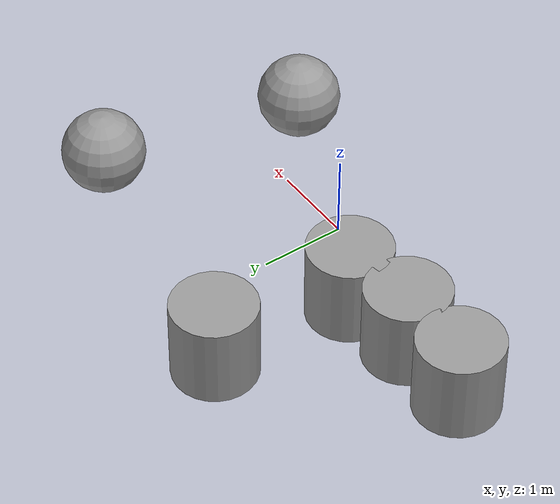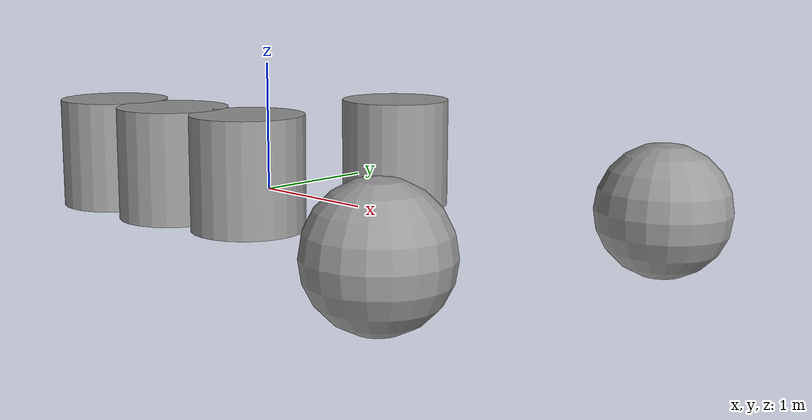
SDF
<?xml version='1.0'?>
<sdf version='1.6'>
  <model name='obstacles.sdf'>
    <link name='link_0'>
      <inertial>
        <mass>1570.8</mass>
        <inertia>
          <ixx>229.074</ixx>
          <ixy>0</ixy>
          <ixz>0</ixz>
          <iyy>229.074</iyy>
          <iyz>0</iyz>
          <izz>196.35</izz>
        </inertia>
        <pose frame=''>0 0 0 0 -0 0</pose>
      </inertial>
      <pose frame=''>-2.50752 0.241175 0 0 -0 0</pose>
      <self_collide>0</self_collide>
      <enable_wind>0</enable_wind>
      <kinematic>0</kinematic>
      <gravity>1</gravity>
      <visual name='visual'>
        <pose frame=''>0 0 0 0 -0 0</pose>
        <geometry>
          <cylinder>
            <radius>0.5</radius>
            <length>1</length>
          </cylinder>
        </geometry>
        <material>
          <lighting>1</lighting>
          <script>
            <uri>file://media/materials/scripts/gazebo.material</uri>
            <name>Gazebo/Grey</name>
          </script>
          <shader type='vertex'>
            <normal_map>__default__</normal_map>
          </shader>
        </material>
        <transparency>0</transparency>
        <cast_shadows>1</cast_shadows>
      </visual>
      <collision name='collision'>
        <laser_retro>0</laser_retro>
        <max_contacts>10</max_contacts>
        <pose frame=''>0 0 0 0 -0 0</pose>
        <geometry>
          <cylinder>
            <radius>0.5</radius>
            <length>1</length>
          </cylinder>
        </geometry>
        <surface>
          <friction>
            <ode>
              <mu>1</mu>
              <mu2>1</mu2>
              <fdir1>0 0 0</fdir1>
              <slip1>0</slip1>
              <slip2>0</slip2>
            </ode>
            <torsional>
              <coefficient>1</coefficient>
              <patch_radius>0</patch_radius>
              <surface_radius>0</surface_radius>
              <use_patch_radius>1</use_patch_radius>
              <ode>
                <slip>0</slip>
              </ode>
            </torsional>
          </friction>
          <bounce>
            <restitution_coefficient>0</restitution_coefficient>
            <threshold>1e+06</threshold>
          </bounce>
          <contact>
            <collide_without_contact>0</collide_without_contact>
            <collide_without_contact_bitmask>1</collide_without_contact_bitmask>
            <collide_bitmask>1</collide_bitmask>
            <ode>
              <soft_cfm>0</soft_cfm>
              <soft_erp>0.2</soft_erp>
              <kp>1e+13</kp>
              <kd>1</kd>
              <max_vel>0.01</max_vel>
              <min_depth>0</min_depth>
            </ode>
            <bullet>
              <split_impulse>1</split_impulse>
              <split_impulse_penetration_threshold>-0.01</split_impulse_penetration_threshold>
              <soft_cfm>0</soft_cfm>
              <soft_erp>0.2</soft_erp>
              <kp>1e+13</kp>
              <kd>1</kd>
            </bullet>
          </contact>
        </surface>
      </collision>
    </link>
    <link name='link_1'>
      <inertial>
        <mass>1570.8</mass>
        <inertia>
          <ixx>229.074</ixx>
          <ixy>0</ixy>
          <ixz>0</ixz>
          <iyy>229.074</iyy>
          <iyz>0</iyz>
          <izz>196.35</izz>
        </inertia>
        <pose frame=''>0 0 0 0 -0 0</pose>
      </inertial>
      <pose frame=''>-1.58866 0.239551 0 0 -0 0</pose>
      <self_collide>0</self_collide>
      <enable_wind>0</enable_wind>
      <kinematic>0</kinematic>
      <gravity>1</gravity>
      <visual name='visual'>
        <pose frame=''>0 0 0 0 -0 0</pose>
        <geometry>
          <cylinder>
            <radius>0.5</radius>
            <length>1</length>
          </cylinder>
        </geometry>
        <material>
          <lighting>1</lighting>
          <script>
            <uri>file://media/materials/scripts/gazebo.material</uri>
            <name>Gazebo/Grey</name>
          </script>
          <shader type='vertex'>
            <normal_map>__default__</normal_map>
          </shader>
        </material>
        <transparency>0</transparency>
        <cast_shadows>1</cast_shadows>
      </visual>
      <collision name='collision'>
        <laser_retro>0</laser_retro>
        <max_contacts>10</max_contacts>
        <pose frame=''>0 0 0 0 -0 0</pose>
        <geometry>
          <cylinder>
            <radius>0.5</radius>
            <length>1</length>
          </cylinder>
        </geometry>
        <surface>
          <friction>
            <ode>
              <mu>1</mu>
              <mu2>1</mu2>
              <fdir1>0 0 0</fdir1>
              <slip1>0</slip1>
              <slip2>0</slip2>
            </ode>
            <torsional>
              <coefficient>1</coefficient>
              <patch_radius>0</patch_radius>
              <surface_radius>0</surface_radius>
              <use_patch_radius>1</use_patch_radius>
              <ode>
                <slip>0</slip>
              </ode>
            </torsional>
          </friction>
          <bounce>
            <restitution_coefficient>0</restitution_coefficient>
            <threshold>1e+06</threshold>
          </bounce>
          <contact>
            <collide_without_contact>0</collide_without_contact>
            <collide_without_contact_bitmask>1</collide_without_contact_bitmask>
            <collide_bitmask>1</collide_bitmask>
            <ode>
              <soft_cfm>0</soft_cfm>
              <soft_erp>0.2</soft_erp>
              <kp>1e+13</kp>
              <kd>1</kd>
              <max_vel>0.01</max_vel>
              <min_depth>0</min_depth>
            </ode>
            <bullet>
              <split_impulse>1</split_impulse>
              <split_impulse_penetration_threshold>-0.01</split_impulse_penetration_threshold>
              <soft_cfm>0</soft_cfm>
              <soft_erp>0.2</soft_erp>
              <kp>1e+13</kp>
              <kd>1</kd>
            </bullet>
          </contact>
        </surface>
      </collision>
    </link>
    <link name='link_2'>
      <inertial>
        <mass>1570.8</mass>
        <inertia>
          <ixx>229.074</ixx>
          <ixy>0</ixy>
          <ixz>0</ixz>
          <iyy>229.074</iyy>
          <iyz>0</iyz>
          <izz>196.35</izz>
        </inertia>
        <pose frame=''>0 0 0 0 -0 0</pose>
      </inertial>
      <pose frame=''>-0.707908 0.367576 0 0 -0 0</pose>
      <self_collide>0</self_collide>
      <enable_wind>0</enable_wind>
      <kinematic>0</kinematic>
      <gravity>1</gravity>
      <visual name='visual'>
        <pose frame=''>0 0 0 0 -0 0</pose>
        <geometry>
          <cylinder>
            <radius>0.5</radius>
            <length>1</length>
          </cylinder>
        </geometry>
        <material>
          <lighting>1</lighting>
          <script>
            <uri>file://media/materials/scripts/gazebo.material</uri>
            <name>Gazebo/Grey</name>
          </script>
          <shader type='vertex'>
            <normal_map>__default__</normal_map>
          </shader>
        </material>
        <transparency>0</transparency>
        <cast_shadows>1</cast_shadows>
      </visual>
      <collision name='collision'>
        <laser_retro>0</laser_retro>
        <max_contacts>10</max_contacts>
        <pose frame=''>0 0 0 0 -0 0</pose>
        <geometry>
          <cylinder>
            <radius>0.5</radius>
            <length>1</length>
          </cylinder>
        </geometry>
        <surface>
          <friction>
            <ode>
              <mu>1</mu>
              <mu2>1</mu2>
              <fdir1>0 0 0</fdir1>
              <slip1>0</slip1>
              <slip2>0</slip2>
            </ode>
            <torsional>
              <coefficient>1</coefficient>
              <patch_radius>0</patch_radius>
              <surface_radius>0</surface_radius>
              <use_patch_radius>1</use_patch_radius>
              <ode>
                <slip>0</slip>
              </ode>
            </torsional>
          </friction>
          <bounce>
            <restitution_coefficient>0</restitution_coefficient>
            <threshold>1e+06</threshold>
          </bounce>
          <contact>
            <collide_without_contact>0</collide_without_contact>
            <collide_without_contact_bitmask>1</collide_without_contact_bitmask>
            <collide_bitmask>1</collide_bitmask>
            <ode>
              <soft_cfm>0</soft_cfm>
              <soft_erp>0.2</soft_erp>
              <kp>1e+13</kp>
              <kd>1</kd>
              <max_vel>0.01</max_vel>
              <min_depth>0</min_depth>
            </ode>
            <bullet>
              <split_impulse>1</split_impulse>
              <split_impulse_penetration_threshold>-0.01</split_impulse_penetration_threshold>
              <soft_cfm>0</soft_cfm>
              <soft_erp>0.2</soft_erp>
              <kp>1e+13</kp>
              <kd>1</kd>
            </bullet>
          </contact>
        </surface>
      </collision>
    </link>
    <link name='link_3'>
      <inertial>
        <mass>1570.8</mass>
        <inertia>
          <ixx>229.074</ixx>
          <ixy>0</ixy>
          <ixz>0</ixz>
          <iyy>229.074</iyy>
          <iyz>0</iyz>
          <izz>196.35</izz>
        </inertia>
        <pose frame=''>0 0 0 0 -0 0</pose>
      </inertial>
      <pose frame=''>-0.588067 2.08543 0 0 -0 0</pose>
      <self_collide>0</self_collide>
      <enable_wind>0</enable_wind>
      <kinematic>0</kinematic>
      <gravity>1</gravity>
      <visual name='visual'>
        <pose frame=''>0 0 0 0 -0 0</pose>
        <geometry>
          <cylinder>
            <radius>0.5</radius>
            <length>1</length>
          </cylinder>
        </geometry>
        <material>
          <lighting>1</lighting>
          <script>
            <uri>file://media/materials/scripts/gazebo.material</uri>
            <name>Gazebo/Grey</name>
          </script>
          <shader type='vertex'>
            <normal_map>__default__</normal_map>
          </shader>
        </material>
        <transparency>0</transparency>
        <cast_shadows>1</cast_shadows>
      </visual>
      <collision name='collision'>
        <laser_retro>0</laser_retro>
        <max_contacts>10</max_contacts>
        <pose frame=''>0 0 0 0 -0 0</pose>
        <geometry>
          <cylinder>
            <radius>0.5</radius>
            <length>1</length>
          </cylinder>
        </geometry>
        <surface>
          <friction>
            <ode>
              <mu>1</mu>
              <mu2>1</mu2>
              <fdir1>0 0 0</fdir1>
              <slip1>0</slip1>
              <slip2>0</slip2>
            </ode>
            <torsional>
              <coefficient>1</coefficient>
              <patch_radius>0</patch_radius>
              <surface_radius>0</surface_radius>
              <use_patch_radius>1</use_patch_radius>
              <ode>
                <slip>0</slip>
              </ode>
            </torsional>
          </friction>
          <bounce>
            <restitution_coefficient>0</restitution_coefficient>
            <threshold>1e+06</threshold>
          </bounce>
          <contact>
            <collide_without_contact>0</collide_without_contact>
            <collide_without_contact_bitmask>1</collide_without_contact_bitmask>
            <collide_bitmask>1</collide_bitmask>
            <ode>
              <soft_cfm>0</soft_cfm>
              <soft_erp>0.2</soft_erp>
              <kp>1e+13</kp>
              <kd>1</kd>
              <max_vel>0.01</max_vel>
              <min_depth>0</min_depth>
            </ode>
            <bullet>
              <split_impulse>1</split_impulse>
              <split_impulse_penetration_threshold>-0.01</split_impulse_penetration_threshold>
              <soft_cfm>0</soft_cfm>
              <soft_erp>0.2</soft_erp>
              <kp>1e+13</kp>
              <kd>1</kd>
            </bullet>
          </contact>
        </surface>
      </collision>
    </link>
    <link name='link_5'>
      <inertial>
        <mass>1047.2</mass>
        <inertia>
          <ixx>104.72</ixx>
          <ixy>0</ixy>
          <ixz>0</ixz>
          <iyy>104.72</iyy>
          <iyz>0</iyz>
          <izz>104.72</izz>
        </inertia>
        <pose frame=''>0 0 0 0 -0 0</pose>
      </inertial>
      <pose frame=''>2.15914 -0.982726 0 0 -0 0</pose>
      <self_collide>0</self_collide>
      <enable_wind>0</enable_wind>
      <kinematic>0</kinematic>
      <gravity>1</gravity>
      <visual name='visual'>
        <pose frame=''>0 0 0 0 -0 0</pose>
        <geometry>
          <sphere>
            <radius>0.5</radius>
          </sphere>
        </geometry>
        <material>
          <lighting>1</lighting>
          <script>
            <uri>file://media/materials/scripts/gazebo.material</uri>
            <name>Gazebo/Grey</name>
          </script>
          <shader type='vertex'>
            <normal_map>__default__</normal_map>
          </shader>
        </material>
        <transparency>0</transparency>
        <cast_shadows>1</cast_shadows>
      </visual>
      <collision name='collision'>
        <laser_retro>0</laser_retro>
        <max_contacts>10</max_contacts>
        <pose frame=''>0 0 0 0 -0 0</pose>
        <geometry>
          <sphere>
            <radius>0.5</radius>
          </sphere>
        </geometry>
        <surface>
          <friction>
            <ode>
              <mu>1</mu>
              <mu2>1</mu2>
              <fdir1>0 0 0</fdir1>
              <slip1>0</slip1>
              <slip2>0</slip2>
            </ode>
            <torsional>
              <coefficient>1</coefficient>
              <patch_radius>0</patch_radius>
              <surface_radius>0</surface_radius>
              <use_patch_radius>1</use_patch_radius>
              <ode>
                <slip>0</slip>
              </ode>
            </torsional>
          </friction>
          <bounce>
            <restitution_coefficient>0</restitution_coefficient>
            <threshold>1e+06</threshold>
          </bounce>
          <contact>
            <collide_without_contact>0</collide_without_contact>
            <collide_without_contact_bitmask>1</collide_without_contact_bitmask>
            <collide_bitmask>1</collide_bitmask>
            <ode>
              <soft_cfm>0</soft_cfm>
              <soft_erp>0.2</soft_erp>
              <kp>1e+13</kp>
              <kd>1</kd>
              <max_vel>0.01</max_vel>
              <min_depth>0</min_depth>
            </ode>
            <bullet>
              <split_impulse>1</split_impulse>
              <split_impulse_penetration_threshold>-0.01</split_impulse_penetration_threshold>
              <soft_cfm>0</soft_cfm>
              <soft_erp>0.2</soft_erp>
              <kp>1e+13</kp>
              <kd>1</kd>
            </bullet>
          </contact>
        </surface>
      </collision>
    </link>
    <link name='link_6'>
      <inertial>
        <mass>1047.2</mass>
        <inertia>
          <ixx>104.72</ixx>
          <ixy>0</ixy>
          <ixz>0</ixz>
          <iyy>104.72</iyy>
          <iyz>0</iyz>
          <izz>104.72</izz>
        </inertia>
        <pose frame=''>0 0 0 0 -0 0</pose>
      </inertial>
      <pose frame=''>2.66066 1.47394 0 0 -0 0</pose>
      <self_collide>0</self_collide>
      <enable_wind>0</enable_wind>
      <kinematic>0</kinematic>
      <gravity>1</gravity>
      <visual name='visual'>
        <pose frame=''>0 0 0 0 -0 0</pose>
        <geometry>
          <sphere>
            <radius>0.5</radius>
          </sphere>
        </geometry>
        <material>
          <lighting>1</lighting>
          <script>
            <uri>file://media/materials/scripts/gazebo.material</uri>
            <name>Gazebo/Grey</name>
          </script>
          <shader type='vertex'>
            <normal_map>__default__</normal_map>
          </shader>
        </material>
        <transparency>0</transparency>
        <cast_shadows>1</cast_shadows>
      </visual>
      <collision name='collision'>
        <laser_retro>0</laser_retro>
        <max_contacts>10</max_contacts>
        <pose frame=''>0 0 0 0 -0 0</pose>
        <geometry>
          <sphere>
            <radius>0.5</radius>
          </sphere>
        </geometry>
        <surface>
          <friction>
            <ode>
              <mu>1</mu>
              <mu2>1</mu2>
              <fdir1>0 0 0</fdir1>
              <slip1>0</slip1>
              <slip2>0</slip2>
            </ode>
            <torsional>
              <coefficient>1</coefficient>
              <patch_radius>0</patch_radius>
              <surface_radius>0</surface_radius>
              <use_patch_radius>1</use_patch_radius>
              <ode>
                <slip>0</slip>
              </ode>
            </torsional>
          </friction>
          <bounce>
            <restitution_coefficient>0</restitution_coefficient>
            <threshold>1e+06</threshold>
          </bounce>
          <contact>
            <collide_without_contact>0</collide_without_contact>
            <collide_without_contact_bitmask>1</collide_without_contact_bitmask>
            <collide_bitmask>1</collide_bitmask>
            <ode>
              <soft_cfm>0</soft_cfm>
              <soft_erp>0.2</soft_erp>
              <kp>1e+13</kp>
              <kd>1</kd>
              <max_vel>0.01</max_vel>
              <min_depth>0</min_depth>
            </ode>
            <bullet>
              <split_impulse>1</split_impulse>
              <split_impulse_penetration_threshold>-0.01</split_impulse_penetration_threshold>
              <soft_cfm>0</soft_cfm>
              <soft_erp>0.2</soft_erp>
              <kp>1e+13</kp>
              <kd>1</kd>
            </bullet>
          </contact>
        </surface>
      </collision>
    </link>
    <static>0</static>
    <allow_auto_disable>1</allow_auto_disable>
  </model>
</sdf>
